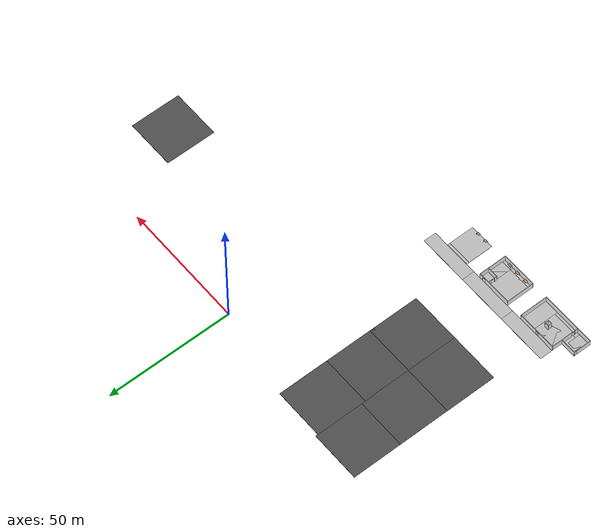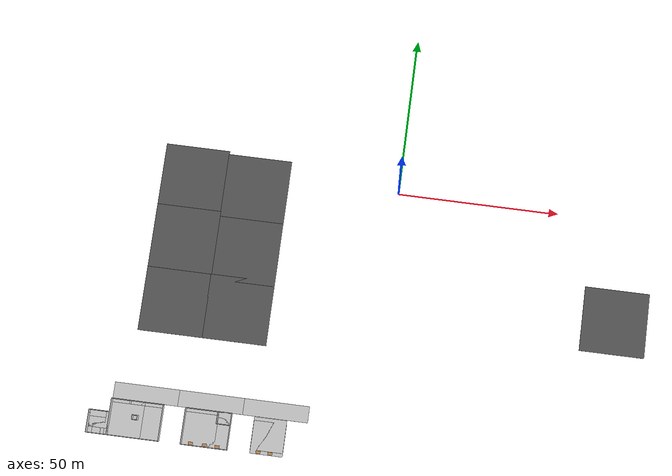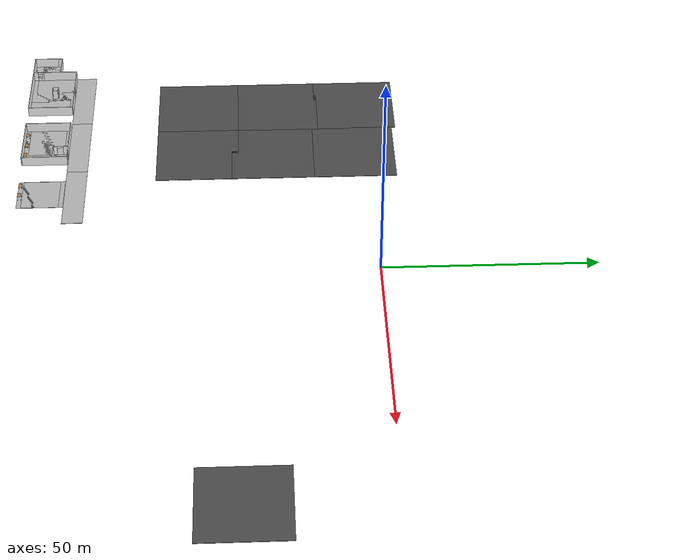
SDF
<sdf version="1.6">
 <world name="default">
  <model name="office1">
   <pose>-70.8387 -79.6403 0 0 -0 0</pose>
   <link name="Wall_11">
    <pose>-7.925 0 0 0 0 -1.5708</pose>
    <visual name="Wall_11_Visual_0">
     <pose>-1.33407 0 1.25 0 -0 0</pose>
     <geometry><box><size>8.58187 0.15 2.5</size></box></geometry>
     <material>
      <script>
       <uri>model://office_env/materials/scripts</uri>
       <uri>model://office_env/materials/textures</uri>
       <name>wall</name>
      </script>
      <ambient>1 1 1 1</ambient>
     </material>
    </visual>
    <collision name="Wall_11_Collision_0">
     <geometry><box><size>8.58187 0.15 2.5</size></box></geometry>
     <pose>-1.33407 0 1.25 0 -0 0</pose>
    </collision>
    <visual name="Wall_11_Visual_1">
     <pose>5.04094 0 1.25 0 -0 0</pose>
     <geometry><box><size>1.16813 0.15 2.5</size></box></geometry>
     <material>
      <script>
       <uri>model://office_env/materials/scripts</uri>
       <uri>model://office_env/materials/textures</uri>
       <name>wall</name>
      </script>
      <ambient>1 1 1 1</ambient>
     </material>
    </visual>
    <collision name="Wall_11_Collision_1">
     <geometry><box><size>1.16813 0.15 2.5</size></box></geometry>
     <pose>5.04094 0 1.25 0 -0 0</pose>
    </collision>
    <visual name="Wall_11_Visual_2">
     <pose>3.70687 0 2.25 0 -0 0</pose>
     <geometry><box><size>1.5 0.15 0.5</size></box></geometry>
     <material>
      <script>
       <uri>model://office_env/materials/scripts</uri>
       <uri>model://office_env/materials/textures</uri>
       <name>wall</name>
      </script>
      <ambient>1 1 1 1</ambient>
     </material>
    </visual>
    <collision name="Wall_11_Collision_2">
     <geometry><box><size>1.5 0.15 0.5</size></box></geometry>
     <pose>3.70687 0 2.25 0 -0 0</pose>
    </collision>
   </link>
   <link name="Wall_12">
    <collision name="Wall_12_Collision">
     <geometry><box><size>16 0.15 2.5</size></box></geometry>
     <pose>0 0 1.25 0 -0 0</pose>
    </collision>
    <visual name="Wall_12_Visual">
     <pose>0 0 1.25 0 -0 0</pose>
     <geometry><box><size>16 0.15 2.5</size></box></geometry>
     <material>
      <script>
       <uri>model://office_env/materials/scripts</uri>
       <uri>model://office_env/materials/textures</uri>
       <name>wall</name>
      </script>
      <ambient>1 1 1 1</ambient>
     </material>
    </visual>
    <pose>0 -5.55 0 0 -0 0</pose>
   </link>
   <link name="Wall_13">
    <collision name="Wall_13_Collision">
     <geometry><box><size>11.25 0.15 2.5</size></box></geometry>
     <pose>0 0 1.25 0 -0 0</pose>
    </collision>
    <visual name="Wall_13_Visual">
     <pose>0 0 1.25 0 -0 0</pose>
     <geometry><box><size>11.25 0.15 2.5</size></box></geometry>
     <material>
      <script>
       <uri>model://office_env/materials/scripts</uri>
       <uri>model://office_env/materials/textures</uri>
       <name>wall</name>
      </script>
      <ambient>1 1 1 1</ambient>
     </material>
    </visual>
    <pose>7.925 0 0 0 -0 1.5708</pose>
   </link>
   <link name="Wall_14">
    <pose>0 5.55 0 0 -0 3.14159</pose>
    <visual name="Wall_14_Visual_0">
     <pose>-4.22963 0 1.25 0 -0 0</pose>
     <geometry><box><size>7.54074 0.15 2.5</size></box></geometry>
     <material>
      <script>
       <uri>model://office_env/materials/scripts</uri>
       <uri>model://office_env/materials/textures</uri>
       <name>wall</name>
      </script>
      <ambient>1 1 1 1</ambient>
     </material>
    </visual>
    <collision name="Wall_14_Collision_0">
     <geometry><box><size>7.54074 0.15 2.5</size></box></geometry>
     <pose>-4.22963 0 1.25 0 -0 0</pose>
    </collision>
    <visual name="Wall_14_Visual_1">
     <pose>4.52037 0 1.25 0 -0 0</pose>
     <geometry><box><size>6.95926 0.15 2.5</size></box></geometry>
     <material>
      <script>
       <uri>model://office_env/materials/scripts</uri>
       <uri>model://office_env/materials/textures</uri>
       <name>wall</name>
      </script>
      <ambient>1 1 1 1</ambient>
     </material>
    </visual>
    <collision name="Wall_14_Collision_1">
     <geometry><box><size>6.95926 0.15 2.5</size></box></geometry>
     <pose>4.52037 0 1.25 0 -0 0</pose>
    </collision>
    <visual name="Wall_14_Visual_2">
     <pose>0.290743 0 2.25 0 -0 0</pose>
     <geometry><box><size>1.5 0.15 0.5</size></box></geometry>
     <material>
      <script>
       <uri>model://office_env/materials/scripts</uri>
       <uri>model://office_env/materials/textures</uri>
       <name>wall</name>
      </script>
      <ambient>1 1 1 1</ambient>
     </material>
    </visual>
    <collision name="Wall_14_Collision_2">
     <geometry><box><size>1.5 0.15 0.5</size></box></geometry>
     <pose>0.290743 0 2.25 0 -0 0</pose>
    </collision>
   </link>
   <link name="Wall_16">
    <collision name="Wall_16_Collision">
     <geometry><box><size>1.5 0.15 2.5</size></box></geometry>
     <pose>0 0 1.25 0 -0 0</pose>
    </collision>
    <visual name="Wall_16_Visual">
     <pose>0 0 1.25 0 -0 0</pose>
     <geometry><box><size>1.5 0.15 2.5</size></box></geometry>
     <material>
      <script>
       <uri>model://office_env/materials/scripts</uri>
       <uri>model://office_env/materials/textures</uri>
       <name>wall</name>
      </script>
      <ambient>1 1 1 1</ambient>
     </material>
    </visual>
    <pose>-0.982348 0.645568 0 0 0 -1.5708</pose>
   </link>
   <link name="Wall_17">
    <collision name="Wall_17_Collision">
     <geometry><box><size>1.75 0.15 2.5</size></box></geometry>
     <pose>0 0 1.25 0 -0 0</pose>
    </collision>
    <visual name="Wall_17_Visual">
     <pose>0 0 1.25 0 -0 0</pose>
     <geometry><box><size>1.75 0.15 2.5</size></box></geometry>
     <material>
      <script>
       <uri>model://office_env/materials/scripts</uri>
       <uri>model://office_env/materials/textures</uri>
       <name>wall</name>
      </script>
      <ambient>1 1 1 1</ambient>
     </material>
    </visual>
    <pose>-0.182348 -0.029432 0 0 -0 0</pose>
   </link>
   <link name="Wall_18">
    <collision name="Wall_18_Collision">
     <geometry><box><size>1.5 0.15 2.5</size></box></geometry>
     <pose>0 0 1.25 0 -0 0</pose>
    </collision>
    <visual name="Wall_18_Visual">
     <pose>0 0 1.25 0 -0 0</pose>
     <geometry><box><size>1.5 0.15 2.5</size></box></geometry>
     <material>
      <script>
       <uri>model://office_env/materials/scripts</uri>
       <uri>model://office_env/materials/textures</uri>
       <name>wall</name>
      </script>
      <ambient>1 1 1 1</ambient>
     </material>
    </visual>
    <pose>0.617652 0.645568 0 0 -0 1.5708</pose>
   </link>
   <link name="Wall_19">
    <collision name="Wall_19_Collision">
     <geometry><box><size>1.75 0.15 2.5</size></box></geometry>
     <pose>0 0 1.25 0 -0 0</pose>
    </collision>
    <visual name="Wall_19_Visual">
     <pose>0 0 1.25 0 -0 0</pose>
     <geometry><box><size>1.75 0.15 2.5</size></box></geometry>
     <material>
      <script>
       <uri>model://office_env/materials/scripts</uri>
       <uri>model://office_env/materials/textures</uri>
       <name>wall</name>
      </script>
      <ambient>1 1 1 1</ambient>
     </material>
    </visual>
    <pose>-0.182348 1.32057 0 0 -0 3.14159</pose>
   </link>
   <static>1</static>
  </model>
  <model name="office2">
   <pose>-81.9632 -81.7145 0 0 -0 0</pose>
   <link name="Wall_21">
    <collision name="Wall_21_Collision">
     <geometry><box><size>6 0.15 2.5</size></box></geometry>
     <pose>0 0 1.25 0 -0 0</pose>
    </collision>
    <visual name="Wall_21_Visual">
     <pose>0 0 1.25 0 -0 0</pose>
     <geometry><box><size>6 0.15 2.5</size></box></geometry>
     <material>
      <script>
       <uri>model://office_env/materials/scripts</uri>
       <uri>model://office_env/materials/textures</uri>
       <name>wall</name>
      </script>
      <ambient>1 1 1 1</ambient>
     </material>
    </visual>
    <pose>-3.05 -0.55 0 0 0 -1.5708</pose>
   </link>
   <link name="Wall_22">
    <collision name="Wall_22_Collision">
     <geometry><box><size>6.25 0.15 2.5</size></box></geometry>
     <pose>0 0 1.25 0 -0 0</pose>
    </collision>
    <visual name="Wall_22_Visual">
     <pose>0 0 1.25 0 -0 0</pose>
     <geometry><box><size>6.25 0.15 2.5</size></box></geometry>
     <material>
      <script>
       <uri>model://office_env/materials/scripts</uri>
       <uri>model://office_env/materials/textures</uri>
       <name>wall</name>
      </script>
      <ambient>1 1 1 1</ambient>
     </material>
    </visual>
    <pose>0 -3.475 0 0 -0 0</pose>
   </link>
   <link name="Wall_24">
    <collision name="Wall_24_Collision">
     <geometry><box><size>1.25 0.15 2.5</size></box></geometry>
     <pose>0 0 1.25 0 -0 0</pose>
    </collision>
    <visual name="Wall_24_Visual">
     <pose>0 0 1.25 0 -0 0</pose>
     <geometry><box><size>1.25 0.15 2.5</size></box></geometry>
     <material>
      <script>
       <uri>model://office_env/materials/scripts</uri>
       <uri>model://office_env/materials/textures</uri>
       <name>wall</name>
      </script>
      <ambient>1 1 1 1</ambient>
     </material>
    </visual>
    <pose>-3.05 2.925 0 0 -0 1.5708</pose>
   </link>
   <link name="Wall_25">
    <collision name="Wall_25_Collision">
     <geometry><box><size>6.25 0.15 2.5</size></box></geometry>
     <pose>0 0 1.25 0 -0 0</pose>
    </collision>
    <visual name="Wall_25_Visual">
     <pose>0 0 1.25 0 -0 0</pose>
     <geometry><box><size>6.25 0.15 2.5</size></box></geometry>
     <material>
      <script>
       <uri>model://office_env/materials/scripts</uri>
       <uri>model://office_env/materials/textures</uri>
       <name>wall</name>
      </script>
      <ambient>1 1 1 1</ambient>
     </material>
    </visual>
    <pose>0 3.475 0 0 -0 0</pose>
   </link>
   <static>1</static>
  </model>
  <model name="office3">
   <pose>-49.0179 -79.6403 0 0 -0 0</pose>
   <link name="Wall_226">
    <collision name="Wall_226_Collision">
     <geometry><box><size>11.25 0.15 2.5</size></box></geometry>
     <pose>0 0 1.25 0 -0 0</pose>
    </collision>
    <visual name="Wall_226_Visual">
     <pose>0 0 1.25 0 -0 0</pose>
     <geometry><box><size>11.25 0.15 2.5</size></box></geometry>
     <material>
      <script>
       <uri>model://office_env/materials/scripts</uri>
       <uri>model://office_env/materials/textures</uri>
       <name>wall</name>
      </script>
      <ambient>1 1 1 1</ambient>
     </material>
    </visual>
    <pose>-7.05 0 0 0 -0 1.5708</pose>
   </link>
   <link name="Wall_228">
    <pose>0 5.55 0 0 -0 0</pose>
    <visual name="Wall_228_Visual_0">
     <pose>-1.41788 0 1.25 0 -0 0</pose>
     <geometry><box><size>11.4142 0.15 2.5</size></box></geometry>
     <material>
      <script>
       <uri>model://office_env/materials/scripts</uri>
       <uri>model://office_env/materials/textures</uri>
       <name>wall</name>
      </script>
      <ambient>1 1 1 1</ambient>
     </material>
    </visual>
    <collision name="Wall_228_Collision_0">
     <geometry><box><size>11.4142 0.15 2.5</size></box></geometry>
     <pose>-1.41788 0 1.25 0 -0 0</pose>
    </collision>
    <visual name="Wall_228_Visual_1">
     <pose>6.45712 0 1.25 0 -0 0</pose>
     <geometry><box><size>1.33575 0.15 2.5</size></box></geometry>
     <material>
      <script>
       <uri>model://office_env/materials/scripts</uri>
       <uri>model://office_env/materials/textures</uri>
       <name>wall</name>
      </script>
      <ambient>1 1 1 1</ambient>
     </material>
    </visual>
    <collision name="Wall_228_Collision_1">
     <geometry><box><size>1.33575 0.15 2.5</size></box></geometry>
     <pose>6.45712 0 1.25 0 -0 0</pose>
    </collision>
    <visual name="Wall_228_Visual_2">
     <pose>5.03925 0 2.25 0 -0 0</pose>
     <geometry><box><size>1.5 0.15 0.5</size></box></geometry>
     <material>
      <script>
       <uri>model://office_env/materials/scripts</uri>
       <uri>model://office_env/materials/textures</uri>
       <name>wall</name>
      </script>
      <ambient>1 1 1 1</ambient>
     </material>
    </visual>
    <collision name="Wall_228_Collision_2">
     <geometry><box><size>1.5 0.15 0.5</size></box></geometry>
     <pose>5.03925 0 2.25 0 -0 0</pose>
    </collision>
   </link>
   <link name="Wall_229">
    <collision name="Wall_229_Collision">
     <geometry><box><size>11.25 0.15 2.5</size></box></geometry>
     <pose>0 0 1.25 0 -0 0</pose>
    </collision>
    <visual name="Wall_229_Visual">
     <pose>0 0 1.25 0 -0 0</pose>
     <geometry><box><size>11.25 0.15 2.5</size></box></geometry>
     <material>
      <script>
       <uri>model://office_env/materials/scripts</uri>
       <uri>model://office_env/materials/textures</uri>
       <name>wall</name>
      </script>
      <ambient>1 1 1 1</ambient>
     </material>
    </visual>
    <pose>7.05 0 0 0 0 -1.5708</pose>
   </link>
   <link name="Wall_230">
    <collision name="Wall_230_Collision">
     <geometry><box><size>14 0.15 2.5</size></box></geometry>
     <pose>0 0 1.25 0 -0 0</pose>
    </collision>
    <visual name="Wall_230_Visual">
     <pose>0 0 1.25 0 -0 0</pose>
     <geometry><box><size>14 0.15 2.5</size></box></geometry>
     <material>
      <script>
       <uri>model://office_env/materials/scripts</uri>
       <uri>model://office_env/materials/textures</uri>
       <name>wall</name>
      </script>
      <ambient>1 1 1 1</ambient>
     </material>
    </visual>
    <pose>0.125 -5.55 0 0 -0 3.14159</pose>
   </link>
   <link name="Wall_231">
    <collision name="Wall_231_Collision">
     <geometry><box><size>0.4 0.15 2.5</size></box></geometry>
     <pose>0 0 1.25 0 -0 0</pose>
    </collision>
    <visual name="Wall_231_Visual">
     <pose>0 0 1.25 0 -0 0</pose>
     <geometry><box><size>0.4 0.15 2.5</size></box></geometry>
     <material>
      <script>
       <uri>model://office_env/materials/scripts</uri>
       <uri>model://office_env/materials/textures</uri>
       <name>wall</name>
      </script>
      <ambient>1 1 1 1</ambient>
     </material>
    </visual>
    <pose>-6.925 -5.55 0 0 -0 3.14159</pose>
   </link>
   <link name="Wall_235">
    <pose>2.82004 3.69571 0 0 0 -1.5708</pose>
    <visual name="Wall_235_Visual_0">
     <pose>-1.26863 0 1.25 0 -0 0</pose>
     <geometry><box><size>1.21274 0.15 2.5</size></box></geometry>
     <material>
      <script>
       <uri>model://office_env/materials/scripts</uri>
       <uri>model://office_env/materials/textures</uri>
       <name>wall</name>
      </script>
      <ambient>1 1 1 1</ambient>
     </material>
    </visual>
    <collision name="Wall_235_Collision_0">
     <geometry><box><size>1.21274 0.15 2.5</size></box></geometry>
     <pose>-1.26863 0 1.25 0 -0 0</pose>
    </collision>
    <visual name="Wall_235_Visual_1">
     <pose>1.35637 0 1.25 0 -0 0</pose>
     <geometry><box><size>1.03726 0.15 2.5</size></box></geometry>
     <material>
      <script>
       <uri>model://office_env/materials/scripts</uri>
       <uri>model://office_env/materials/textures</uri>
       <name>wall</name>
      </script>
      <ambient>1 1 1 1</ambient>
     </material>
    </visual>
    <collision name="Wall_235_Collision_1">
     <geometry><box><size>1.03726 0.15 2.5</size></box></geometry>
     <pose>1.35637 0 1.25 0 -0 0</pose>
    </collision>
    <visual name="Wall_235_Visual_2">
     <pose>0.087742 0 2.25 0 -0 0</pose>
     <geometry><box><size>1.5 0.15 0.5</size></box></geometry>
     <material>
      <script>
       <uri>model://office_env/materials/scripts</uri>
       <uri>model://office_env/materials/textures</uri>
       <name>wall</name>
      </script>
      <ambient>1 1 1 1</ambient>
     </material>
    </visual>
    <collision name="Wall_235_Collision_2">
     <geometry><box><size>1.5 0.15 0.5</size></box></geometry>
     <pose>0.087742 0 2.25 0 -0 0</pose>
    </collision>
   </link>
   <link name="Wall_236">
    <collision name="Wall_236_Collision">
     <geometry><box><size>4.25 0.15 2.5</size></box></geometry>
     <pose>0 0 1.25 0 -0 0</pose>
    </collision>
    <visual name="Wall_236_Visual">
     <pose>0 0 1.25 0 -0 0</pose>
     <geometry><box><size>4.25 0.15 2.5</size></box></geometry>
     <material>
      <script>
       <uri>model://office_env/materials/scripts</uri>
       <uri>model://office_env/materials/textures</uri>
       <name>wall</name>
      </script>
      <ambient>1 1 1 1</ambient>
     </material>
    </visual>
    <pose>4.87004 1.89571 0 0 -0 0</pose>
   </link>
   <static>1</static>
  </model>
  <model name="asphalt_plane_4">
   <static>1</static>
   <link name="link">
    <collision name="collision"><geometry><box><size>20 20 0.1</size></box></geometry></collision>
    <visual name="visual">
     <cast_shadows>0</cast_shadows>
     <geometry><box><size>20 20 0.1</size></box></geometry>
     <material>
      <script>
       <uri>model://asphalt_plane/materials/scripts</uri>
       <uri>model://asphalt_plane/materials/textures</uri>
       <name>vrc/asphalt</name>
      </script>
     </material>
    </visual>
   </link>
   <pose>-64.5183 -2.94145 0 0 -0 0</pose>
  </model>
  <model name="asphalt_plane_5">
   <static>1</static>
   <link name="link">
    <collision name="collision"><geometry><box><size>20 20 0.1</size></box></geometry></collision>
    <visual name="visual">
     <cast_shadows>0</cast_shadows>
     <geometry><box><size>20 20 0.1</size></box></geometry>
     <material>
      <script>
       <uri>model://asphalt_plane/materials/scripts</uri>
       <uri>model://asphalt_plane/materials/textures</uri>
       <name>vrc/asphalt</name>
      </script>
     </material>
    </visual>
   </link>
   <pose>-64.5294 -22.3652 0 0 -0 0</pose>
  </model>
  <model name="asphalt_plane_6">
   <static>1</static>
   <link name="link">
    <collision name="collision"><geometry><box><size>20 20 0.1</size></box></geometry></collision>
    <visual name="visual">
     <cast_shadows>0</cast_shadows>
     <geometry><box><size>20 20 0.1</size></box></geometry>
     <material>
      <script>
       <uri>model://asphalt_plane/materials/scripts</uri>
       <uri>model://asphalt_plane/materials/textures</uri>
       <name>vrc/asphalt</name>
      </script>
     </material>
    </visual>
   </link>
   <pose>-64.5489 -42.3307 0 0 -0 0</pose>
  </model>
  <model name="asphalt_plane_11">
   <static>1</static>
   <link name="link">
    <collision name="collision"><geometry><box><size>20 20 0.1</size></box></geometry></collision>
    <visual name="visual">
     <cast_shadows>0</cast_shadows>
     <geometry><box><size>20 20 0.1</size></box></geometry>
     <material>
      <script>
       <uri>model://asphalt_plane/materials/scripts</uri>
       <uri>model://asphalt_plane/materials/textures</uri>
       <name>vrc/asphalt</name>
      </script>
     </material>
    </visual>
   </link>
   <pose>-44.6674 -3.87186 0 0 -0 0</pose>
  </model>
  <model name="asphalt_plane_12">
   <static>1</static>
   <link name="link">
    <collision name="collision"><geometry><box><size>20 20 0.1</size></box></geometry></collision>
    <visual name="visual">
     <cast_shadows>0</cast_shadows>
     <geometry><box><size>20 20 0.1</size></box></geometry>
     <material>
      <script>
       <uri>model://asphalt_plane/materials/scripts</uri>
       <uri>model://asphalt_plane/materials/textures</uri>
       <name>vrc/asphalt</name>
      </script>
     </material>
    </visual>
   </link>
   <pose>-44.6971 -23.8447 0 0 -0 0</pose>
  </model>
  <model name="asphalt_plane_13">
   <static>1</static>
   <link name="link">
    <collision name="collision"><geometry><box><size>20 20 0.1</size></box></geometry></collision>
    <visual name="visual">
     <cast_shadows>0</cast_shadows>
     <geometry><box><size>20 20 0.1</size></box></geometry>
     <material>
      <script>
       <uri>model://asphalt_plane/materials/scripts</uri>
       <uri>model://asphalt_plane/materials/textures</uri>
       <name>vrc/asphalt</name>
      </script>
     </material>
    </visual>
   </link>
   <pose>-44.7034 -42.3237 0 0 -0 0</pose>
  </model>
  <model name="asphalt_plane">
   <static>1</static>
   <link name="link">
    <collision name="collision"><geometry><box><size>20 20 0.1</size></box></geometry></collision>
    <visual name="visual">
     <cast_shadows>0</cast_shadows>
     <geometry><box><size>20 20 0.1</size></box></geometry>
     <material>
      <script>
       <uri>model://asphalt_plane/materials/scripts</uri>
       <uri>model://asphalt_plane/materials/textures</uri>
       <name>vrc/asphalt</name>
      </script>
     </material>
    </visual>
   </link>
   <pose>70.7475 -31.5972 0 0 -0 0</pose>
  </model>
  <model name="table_4">
   <static>0</static>
   <link name="link">
    <collision name="surface">
     <pose>0 0 1 0 -0 0</pose>
     <geometry><box><size>1.5 0.8 0.03</size></box></geometry>
     <surface><friction><ode><mu>0.6</mu><mu2>0.6</mu2></ode></friction></surface>
    </collision>
    <visual name="visual1">
     <pose>0 0 1 0 -0 0</pose>
     <geometry><box><size>1.4 0.8 0.04</size></box></geometry>
     <material>
      <script><uri>file://media/materials/scripts/gazebo.material</uri><name>Gazebo/Wood</name></script>
     </material>
    </visual>
    <collision name="front_left_leg">
     <pose>0.68 0.38 0.5 0 -0 0</pose>
     <geometry><cylinder><radius>0.02</radius><length>1</length></cylinder></geometry>
    </collision>
    <visual name="front_left_leg">
     <pose>0.68 0.38 0.5 0 -0 0</pose>
     <geometry><cylinder><radius>0.02</radius><length>1</length></cylinder></geometry>
     <material>
      <script>
       <uri>model://office_env/materials/scripts</uri>
       <uri>model://office_env/materials/textures</uri>
       <name>wall</name>
      </script>
     </material>
    </visual>
    <collision name="front_right_leg">
     <pose>0.68 -0.38 0.5 0 -0 0</pose>
     <geometry><cylinder><radius>0.02</radius><length>1</length></cylinder></geometry>
    </collision>
    <visual name="front_right_leg">
     <pose>0.68 -0.38 0.5 0 -0 0</pose>
     <geometry><cylinder><radius>0.02</radius><length>1</length></cylinder></geometry>
     <material>
      <script>
       <uri>model://office_env/materials/scripts</uri>
       <uri>model://office_env/materials/textures</uri>
       <name>wall</name>
      </script>
     </material>
    </visual>
    <collision name="back_right_leg">
     <pose>-0.68 -0.38 0.5 0 -0 0</pose>
     <geometry><cylinder><radius>0.02</radius><length>1</length></cylinder></geometry>
    </collision>
    <visual name="back_right_leg">
     <pose>-0.68 -0.38 0.5 0 -0 0</pose>
     <geometry><cylinder><radius>0.02</radius><length>1</length></cylinder></geometry>
     <material>
      <script>
       <uri>model://office_env/materials/scripts</uri>
       <uri>model://office_env/materials/textures</uri>
       <name>wall</name>
      </script>
     </material>
    </visual>
    <collision name="back_left_leg">
     <pose>-0.68 0.38 0.5 0 -0 0</pose>
     <geometry><cylinder><radius>0.02</radius><length>1</length></cylinder></geometry>
    </collision>
    <visual name="back_left_leg">
     <pose>-0.68 0.38 0.5 0 -0 0</pose>
     <geometry><cylinder><radius>0.02</radius><length>1</length></cylinder></geometry>
     <material>
      <script>
       <uri>model://office_env/materials/scripts</uri>
       <uri>model://office_env/materials/textures</uri>
       <name>wall</name>
      </script>
     </material>
    </visual>
    <inertial>
     <inertia><ixx>1</ixx><ixy>0</ixy><ixz>0</ixz><iyy>1</iyy><iyz>0</iyz><izz>1</izz></inertia>
     <mass>1</mass>
    </inertial>
   </link>
   <pose>-32.5002 -84.6276 0.034993 -3e-06 3e-06 0</pose>
  </model>
  <model name="table_5">
   <static>0</static>
   <link name="link">
    <collision name="surface">
     <pose>0 0 1 0 -0 0</pose>
     <geometry><box><size>1.5 0.8 0.03</size></box></geometry>
     <surface><friction><ode><mu>0.6</mu><mu2>0.6</mu2></ode></friction></surface>
    </collision>
    <visual name="visual1">
     <pose>0 0 1 0 -0 0</pose>
     <geometry><box><size>1.4 0.8 0.04</size></box></geometry>
     <material>
      <script><uri>file://media/materials/scripts/gazebo.material</uri><name>Gazebo/Wood</name></script>
     </material>
    </visual>
    <collision name="front_left_leg">
     <pose>0.68 0.38 0.5 0 -0 0</pose>
     <geometry><cylinder><radius>0.02</radius><length>1</length></cylinder></geometry>
    </collision>
    <visual name="front_left_leg">
     <pose>0.68 0.38 0.5 0 -0 0</pose>
     <geometry><cylinder><radius>0.02</radius><length>1</length></cylinder></geometry>
     <material>
      <script>
       <uri>model://office_env/materials/scripts</uri>
       <uri>model://office_env/materials/textures</uri>
       <name>wall</name>
      </script>
     </material>
    </visual>
    <collision name="front_right_leg">
     <pose>0.68 -0.38 0.5 0 -0 0</pose>
     <geometry><cylinder><radius>0.02</radius><length>1</length></cylinder></geometry>
    </collision>
    <visual name="front_right_leg">
     <pose>0.68 -0.38 0.5 0 -0 0</pose>
     <geometry><cylinder><radius>0.02</radius><length>1</length></cylinder></geometry>
     <material>
      <script>
       <uri>model://office_env/materials/scripts</uri>
       <uri>model://office_env/materials/textures</uri>
       <name>wall</name>
      </script>
     </material>
    </visual>
    <collision name="back_right_leg">
     <pose>-0.68 -0.38 0.5 0 -0 0</pose>
     <geometry><cylinder><radius>0.02</radius><length>1</length></cylinder></geometry>
    </collision>
    <visual name="back_right_leg">
     <pose>-0.68 -0.38 0.5 0 -0 0</pose>
     <geometry><cylinder><radius>0.02</radius><length>1</length></cylinder></geometry>
     <material>
      <script>
       <uri>model://office_env/materials/scripts</uri>
       <uri>model://office_env/materials/textures</uri>
       <name>wall</name>
      </script>
     </material>
    </visual>
    <collision name="back_left_leg">
     <pose>-0.68 0.38 0.5 0 -0 0</pose>
     <geometry><cylinder><radius>0.02</radius><length>1</length></cylinder></geometry>
    </collision>
    <visual name="back_left_leg">
     <pose>-0.68 0.38 0.5 0 -0 0</pose>
     <geometry><cylinder><radius>0.02</radius><length>1</length></cylinder></geometry>
     <material>
      <script>
       <uri>model://office_env/materials/scripts</uri>
       <uri>model://office_env/materials/textures</uri>
       <name>wall</name>
      </script>
     </material>
    </visual>
    <inertial>
     <inertia><ixx>1</ixx><ixy>0</ixy><ixz>0</ixz><iyy>1</iyy><iyz>0</iyz><izz>1</izz></inertia>
     <mass>1</mass>
    </inertial>
   </link>
   <pose>-28.8169 -84.6215 0.034992 0 -0 0</pose>
  </model>
  <model name="table_7">
   <static>0</static>
   <link name="link">
    <collision name="surface">
     <pose>0 0 1 0 -0 0</pose>
     <geometry><box><size>1.5 0.8 0.03</size></box></geometry>
     <surface><friction><ode><mu>0.6</mu><mu2>0.6</mu2></ode></friction></surface>
    </collision>
    <visual name="visual1">
     <pose>0 0 1 0 -0 0</pose>
     <geometry><box><size>1.4 0.8 0.04</size></box></geometry>
     <material>
      <script><uri>file://media/materials/scripts/gazebo.material</uri><name>Gazebo/Wood</name></script>
     </material>
    </visual>
    <collision name="front_left_leg">
     <pose>0.68 0.38 0.5 0 -0 0</pose>
     <geometry><cylinder><radius>0.02</radius><length>1</length></cylinder></geometry>
    </collision>
    <visual name="front_left_leg">
     <pose>0.68 0.38 0.5 0 -0 0</pose>
     <geometry><cylinder><radius>0.02</radius><length>1</length></cylinder></geometry>
     <material>
      <script>
       <uri>model://office_env/materials/scripts</uri>
       <uri>model://office_env/materials/textures</uri>
       <name>wall</name>
      </script>
     </material>
    </visual>
    <collision name="front_right_leg">
     <pose>0.68 -0.38 0.5 0 -0 0</pose>
     <geometry><cylinder><radius>0.02</radius><length>1</length></cylinder></geometry>
    </collision>
    <visual name="front_right_leg">
     <pose>0.68 -0.38 0.5 0 -0 0</pose>
     <geometry><cylinder><radius>0.02</radius><length>1</length></cylinder></geometry>
     <material>
      <script>
       <uri>model://office_env/materials/scripts</uri>
       <uri>model://office_env/materials/textures</uri>
       <name>wall</name>
      </script>
     </material>
    </visual>
    <collision name="back_right_leg">
     <pose>-0.68 -0.38 0.5 0 -0 0</pose>
     <geometry><cylinder><radius>0.02</radius><length>1</length></cylinder></geometry>
    </collision>
    <visual name="back_right_leg">
     <pose>-0.68 -0.38 0.5 0 -0 0</pose>
     <geometry><cylinder><radius>0.02</radius><length>1</length></cylinder></geometry>
     <material>
      <script>
       <uri>model://office_env/materials/scripts</uri>
       <uri>model://office_env/materials/textures</uri>
       <name>wall</name>
      </script>
     </material>
    </visual>
    <collision name="back_left_leg">
     <pose>-0.68 0.38 0.5 0 -0 0</pose>
     <geometry><cylinder><radius>0.02</radius><length>1</length></cylinder></geometry>
    </collision>
    <visual name="back_left_leg">
     <pose>-0.68 0.38 0.5 0 -0 0</pose>
     <geometry><cylinder><radius>0.02</radius><length>1</length></cylinder></geometry>
     <material>
      <script>
       <uri>model://office_env/materials/scripts</uri>
       <uri>model://office_env/materials/textures</uri>
       <name>wall</name>
      </script>
     </material>
    </visual>
    <inertial>
     <inertia><ixx>1</ixx><ixy>0</ixy><ixz>0</ixz><iyy>1</iyy><iyz>0</iyz><izz>1</izz></inertia>
     <mass>1</mass>
    </inertial>
   </link>
   <pose>-53.1425 -84.5557 0.034993 -2e-06 3e-06 0</pose>
  </model>
  <model name="table_8">
   <static>0</static>
   <link name="link">
    <collision name="surface">
     <pose>0 0 1 0 -0 0</pose>
     <geometry><box><size>1.5 0.8 0.03</size></box></geometry>
     <surface><friction><ode><mu>0.6</mu><mu2>0.6</mu2></ode></friction></surface>
    </collision>
    <visual name="visual1">
     <pose>0 0 1 0 -0 0</pose>
     <geometry><box><size>1.4 0.8 0.04</size></box></geometry>
     <material>
      <script><uri>file://media/materials/scripts/gazebo.material</uri><name>Gazebo/Wood</name></script>
     </material>
    </visual>
    <collision name="front_left_leg">
     <pose>0.68 0.38 0.5 0 -0 0</pose>
     <geometry><cylinder><radius>0.02</radius><length>1</length></cylinder></geometry>
    </collision>
    <visual name="front_left_leg">
     <pose>0.68 0.38 0.5 0 -0 0</pose>
     <geometry><cylinder><radius>0.02</radius><length>1</length></cylinder></geometry>
     <material>
      <script>
       <uri>model://office_env/materials/scripts</uri>
       <uri>model://office_env/materials/textures</uri>
       <name>wall</name>
      </script>
     </material>
    </visual>
    <collision name="front_right_leg">
     <pose>0.68 -0.38 0.5 0 -0 0</pose>
     <geometry><cylinder><radius>0.02</radius><length>1</length></cylinder></geometry>
    </collision>
    <visual name="front_right_leg">
     <pose>0.68 -0.38 0.5 0 -0 0</pose>
     <geometry><cylinder><radius>0.02</radius><length>1</length></cylinder></geometry>
     <material>
      <script>
       <uri>model://office_env/materials/scripts</uri>
       <uri>model://office_env/materials/textures</uri>
       <name>wall</name>
      </script>
     </material>
    </visual>
    <collision name="back_right_leg">
     <pose>-0.68 -0.38 0.5 0 -0 0</pose>
     <geometry><cylinder><radius>0.02</radius><length>1</length></cylinder></geometry>
    </collision>
    <visual name="back_right_leg">
     <pose>-0.68 -0.38 0.5 0 -0 0</pose>
     <geometry><cylinder><radius>0.02</radius><length>1</length></cylinder></geometry>
     <material>
      <script>
       <uri>model://office_env/materials/scripts</uri>
       <uri>model://office_env/materials/textures</uri>
       <name>wall</name>
      </script>
     </material>
    </visual>
    <collision name="back_left_leg">
     <pose>-0.68 0.38 0.5 0 -0 0</pose>
     <geometry><cylinder><radius>0.02</radius><length>1</length></cylinder></geometry>
    </collision>
    <visual name="back_left_leg">
     <pose>-0.68 0.38 0.5 0 -0 0</pose>
     <geometry><cylinder><radius>0.02</radius><length>1</length></cylinder></geometry>
     <material>
      <script>
       <uri>model://office_env/materials/scripts</uri>
       <uri>model://office_env/materials/textures</uri>
       <name>wall</name>
      </script>
     </material>
    </visual>
    <inertial>
     <inertia><ixx>1</ixx><ixy>0</ixy><ixz>0</ixz><iyy>1</iyy><iyz>0</iyz><izz>1</izz></inertia>
     <mass>1</mass>
    </inertial>
   </link>
   <pose>-48.8849 -84.5469 0.034991 0 -0 0</pose>
  </model>
  <model name="table_9">
   <static>0</static>
   <link name="link">
    <collision name="surface">
     <pose>0 0 1 0 -0 0</pose>
     <geometry><box><size>1.5 0.8 0.03</size></box></geometry>
     <surface><friction><ode><mu>0.6</mu><mu2>0.6</mu2></ode></friction></surface>
    </collision>
    <visual name="visual1">
     <pose>0 0 1 0 -0 0</pose>
     <geometry><box><size>1.4 0.8 0.04</size></box></geometry>
     <material>
      <script><uri>file://media/materials/scripts/gazebo.material</uri><name>Gazebo/Wood</name></script>
     </material>
    </visual>
    <collision name="front_left_leg">
     <pose>0.68 0.38 0.5 0 -0 0</pose>
     <geometry><cylinder><radius>0.02</radius><length>1</length></cylinder></geometry>
    </collision>
    <visual name="front_left_leg">
     <pose>0.68 0.38 0.5 0 -0 0</pose>
     <geometry><cylinder><radius>0.02</radius><length>1</length></cylinder></geometry>
     <material>
      <script>
       <uri>model://office_env/materials/scripts</uri>
       <uri>model://office_env/materials/textures</uri>
       <name>wall</name>
      </script>
     </material>
    </visual>
    <collision name="front_right_leg">
     <pose>0.68 -0.38 0.5 0 -0 0</pose>
     <geometry><cylinder><radius>0.02</radius><length>1</length></cylinder></geometry>
    </collision>
    <visual name="front_right_leg">
     <pose>0.68 -0.38 0.5 0 -0 0</pose>
     <geometry><cylinder><radius>0.02</radius><length>1</length></cylinder></geometry>
     <material>
      <script>
       <uri>model://office_env/materials/scripts</uri>
       <uri>model://office_env/materials/textures</uri>
       <name>wall</name>
      </script>
     </material>
    </visual>
    <collision name="back_right_leg">
     <pose>-0.68 -0.38 0.5 0 -0 0</pose>
     <geometry><cylinder><radius>0.02</radius><length>1</length></cylinder></geometry>
    </collision>
    <visual name="back_right_leg">
     <pose>-0.68 -0.38 0.5 0 -0 0</pose>
     <geometry><cylinder><radius>0.02</radius><length>1</length></cylinder></geometry>
     <material>
      <script>
       <uri>model://office_env/materials/scripts</uri>
       <uri>model://office_env/materials/textures</uri>
       <name>wall</name>
      </script>
     </material>
    </visual>
    <collision name="back_left_leg">
     <pose>-0.68 0.38 0.5 0 -0 0</pose>
     <geometry><cylinder><radius>0.02</radius><length>1</length></cylinder></geometry>
    </collision>
    <visual name="back_left_leg">
     <pose>-0.68 0.38 0.5 0 -0 0</pose>
     <geometry><cylinder><radius>0.02</radius><length>1</length></cylinder></geometry>
     <material>
      <script>
       <uri>model://office_env/materials/scripts</uri>
       <uri>model://office_env/materials/textures</uri>
       <name>wall</name>
      </script>
     </material>
    </visual>
    <inertial>
     <inertia><ixx>1</ixx><ixy>0</ixy><ixz>0</ixz><iyy>1</iyy><iyz>0</iyz><izz>1</izz></inertia>
     <mass>1</mass>
    </inertial>
   </link>
   <pose>-45.0488 -84.6021 0.034997 2e-06 -3e-06 0</pose>
  </model>
  <model name="Floor_11">
   <link name="main">
    <pose>0 0 0.01 0 -0 0</pose>
    <collision name="main_Collision"><geometry><box><size>5 5 0.05</size></box></geometry></collision>
    <visual name="main_Visual">
     <geometry><box><size>5 5 0.05</size></box></geometry>
     <material>
      <script>
       <uri>model://Floor_verysmall/materials/scripts</uri>
       <uri>model://Floor_verysmall/materials/textures</uri>
       <name>floor</name>
      </script>
     </material>
    </visual>
   </link>
   <static>1</static>
   <pose>-81.1614 -82.7174 0 0 -0 0</pose>
  </model>
  <model name="Floor_12">
   <link name="main">
    <pose>0 0 0.01 0 -0 0</pose>
    <collision name="main_Collision"><geometry><box><size>5 5 0.05</size></box></geometry></collision>
    <visual name="main_Visual">
     <geometry><box><size>5 5 0.05</size></box></geometry>
     <material>
      <script>
       <uri>model://Floor_verysmall/materials/scripts</uri>
       <uri>model://Floor_verysmall/materials/textures</uri>
       <name>floor</name>
      </script>
     </material>
    </visual>
   </link>
   <static>1</static>
   <pose>-81.2158 -80.8143 0 0 -0 0</pose>
  </model>
  <model name="Floor_13">
   <link name="main">
    <pose>0 0 0.01 0 -0 0</pose>
    <collision name="main_Collision"><geometry><box><size>5 5 0.05</size></box></geometry></collision>
    <visual name="main_Visual">
     <geometry><box><size>5 5 0.05</size></box></geometry>
     <material>
      <script>
       <uri>model://Floor_verysmall/materials/scripts</uri>
       <uri>model://Floor_verysmall/materials/textures</uri>
       <name>floor</name>
      </script>
     </material>
    </visual>
   </link>
   <static>1</static>
   <pose>-82.4661 -82.6128 0 0 -0 0</pose>
  </model>
  <model name="Floor_14">
   <link name="main">
    <pose>0 0 0.01 0 -0 0</pose>
    <collision name="main_Collision"><geometry><box><size>5 5 0.05</size></box></geometry></collision>
    <visual name="main_Visual">
     <geometry><box><size>5 5 0.05</size></box></geometry>
     <material>
      <script>
       <uri>model://Floor_verysmall/materials/scripts</uri>
       <uri>model://Floor_verysmall/materials/textures</uri>
       <name>floor</name>
      </script>
     </material>
    </visual>
   </link>
   <static>1</static>
   <pose>-82.4472 -80.8042 0 0 -0 0</pose>
  </model>
  <model name="Floor_17">
   <link name="main">
    <pose>0 0 0.01 0 -0 0</pose>
    <collision name="main_Collision"><geometry><box><size>10 10 0.05</size></box></geometry></collision>
    <visual name="main_Visual">
     <geometry><box><size>10 10 0.05</size></box></geometry>
     <material>
      <script>
       <uri>model://Floor_small/materials/scripts</uri>
       <uri>model://Floor_small/materials/textures</uri>
       <name>floor</name>
      </script>
     </material>
    </visual>
   </link>
   <static>1</static>
   <pose>-30.0626 -80.1866 0 0 -0 0</pose>
  </model>
  <model name="Floor_18">
   <link name="main">
    <pose>0 0 0.01 0 -0 0</pose>
    <collision name="main_Collision"><geometry><box><size>10 10 0.05</size></box></geometry></collision>
    <visual name="main_Visual">
     <geometry><box><size>10 10 0.05</size></box></geometry>
     <material>
      <script>
       <uri>model://Floor_small/materials/scripts</uri>
       <uri>model://Floor_small/materials/textures</uri>
       <name>floor</name>
      </script>
     </material>
    </visual>
   </link>
   <static>1</static>
   <pose>-30.1417 -79.1069 0 0 -0 0</pose>
  </model>
  <model name="Floor_19">
   <link name="main">
    <pose>0 0 0.01 0 -0 0</pose>
    <collision name="main_Collision"><geometry><box><size>10 10 0.05</size></box></geometry></collision>
    <visual name="main_Visual">
     <geometry><box><size>10 10 0.05</size></box></geometry>
     <material>
      <script>
       <uri>model://Floor_small/materials/scripts</uri>
       <uri>model://Floor_small/materials/textures</uri>
       <name>floor</name>
      </script>
     </material>
    </visual>
   </link>
   <static>1</static>
   <pose>-47.0146 -80.1187 0 0 -0 0</pose>
  </model>
  <model name="Floor_20">
   <link name="main">
    <pose>0 0 0.01 0 -0 0</pose>
    <collision name="main_Collision"><geometry><box><size>10 10 0.05</size></box></geometry></collision>
    <visual name="main_Visual">
     <geometry><box><size>10 10 0.05</size></box></geometry>
     <material>
      <script>
       <uri>model://Floor_small/materials/scripts</uri>
       <uri>model://Floor_small/materials/textures</uri>
       <name>floor</name>
      </script>
     </material>
    </visual>
   </link>
   <static>1</static>
   <pose>-47.0243 -79.0861 0 0 -0 0</pose>
  </model>
  <model name="Floor_21">
   <link name="main">
    <pose>0 0 0.01 0 -0 0</pose>
    <collision name="main_Collision"><geometry><box><size>10 10 0.05</size></box></geometry></collision>
    <visual name="main_Visual">
     <geometry><box><size>10 10 0.05</size></box></geometry>
     <material>
      <script>
       <uri>model://Floor_small/materials/scripts</uri>
       <uri>model://Floor_small/materials/textures</uri>
       <name>floor</name>
      </script>
     </material>
    </visual>
   </link>
   <static>1</static>
   <pose>-51.0322 -80.1481 0 0 -0 0</pose>
  </model>
  <model name="Floor_22">
   <link name="main">
    <pose>0 0 0.01 0 -0 0</pose>
    <collision name="main_Collision"><geometry><box><size>10 10 0.05</size></box></geometry></collision>
    <visual name="main_Visual">
     <geometry><box><size>10 10 0.05</size></box></geometry>
     <material>
      <script>
       <uri>model://Floor_small/materials/scripts</uri>
       <uri>model://Floor_small/materials/textures</uri>
       <name>floor</name>
      </script>
     </material>
    </visual>
   </link>
   <static>1</static>
   <pose>-51.0111 -79.0401 0 0 -0 0</pose>
  </model>
  <model name="Floor_23">
   <link name="main">
    <pose>0 0 0.01 0 -0 0</pose>
    <collision name="main_Collision"><geometry><box><size>10 10 0.05</size></box></geometry></collision>
    <visual name="main_Visual">
     <geometry><box><size>10 10 0.05</size></box></geometry>
     <material>
      <script>
       <uri>model://Floor_small/materials/scripts</uri>
       <uri>model://Floor_small/materials/textures</uri>
       <name>floor</name>
      </script>
     </material>
    </visual>
   </link>
   <static>1</static>
   <pose>-73.7752 -80.1087 0 0 -0 0</pose>
  </model>
  <model name="Floor_24">
   <link name="main">
    <pose>0 0 0.01 0 -0 0</pose>
    <collision name="main_Collision"><geometry><box><size>10 10 0.05</size></box></geometry></collision>
    <visual name="main_Visual">
     <geometry><box><size>10 10 0.05</size></box></geometry>
     <material>
      <script>
       <uri>model://Floor_small/materials/scripts</uri>
       <uri>model://Floor_small/materials/textures</uri>
       <name>floor</name>
      </script>
     </material>
    </visual>
   </link>
   <static>1</static>
   <pose>-73.7245 -79.0769 0 0 -0 0</pose>
  </model>
  <model name="Floor_25">
   <link name="main">
    <pose>0 0 0.01 0 -0 0</pose>
    <collision name="main_Collision"><geometry><box><size>10 10 0.05</size></box></geometry></collision>
    <visual name="main_Visual">
     <geometry><box><size>10 10 0.05</size></box></geometry>
     <material>
      <script>
       <uri>model://Floor_small/materials/scripts</uri>
       <uri>model://Floor_small/materials/textures</uri>
       <name>floor</name>
      </script>
     </material>
    </visual>
   </link>
   <static>1</static>
   <pose>-67.9672 -80.1215 0 0 -0 0</pose>
  </model>
  <model name="Floor_26">
   <link name="main">
    <pose>0 0 0.01 0 -0 0</pose>
    <collision name="main_Collision"><geometry><box><size>10 10 0.05</size></box></geometry></collision>
    <visual name="main_Visual">
     <geometry><box><size>10 10 0.05</size></box></geometry>
     <material>
      <script>
       <uri>model://Floor_small/materials/scripts</uri>
       <uri>model://Floor_small/materials/textures</uri>
       <name>floor</name>
      </script>
     </material>
    </visual>
   </link>
   <static>1</static>
   <pose>-67.9802 -79.1548 0 0 -0 0</pose>
  </model>
  <model name="outdoor_plane_clone">
   <static>1</static>
   <link name="link">
    <collision name="collision"><geometry><box><size>5 20 0.1</size></box></geometry></collision>
    <visual name="visual">
     <cast_shadows>0</cast_shadows>
     <geometry><box><size>5 20 0.1</size></box></geometry>
     <material>
      <script>
       <uri>model://outdoor_plane/materials/scripts</uri>
       <uri>model://outdoor_plane/materials/textures</uri>
       <name>outds/Image</name>
      </script>
     </material>
    </visual>
   </link>
   <pose>-48.8451 -71.5216 0 0 -0 1.57079</pose>
  </model>
  <model name="outdoor_plane_clone_clone">
   <static>1</static>
   <link name="link">
    <collision name="collision"><geometry><box><size>5 20 0.1</size></box></geometry></collision>
    <visual name="visual">
     <cast_shadows>0</cast_shadows>
     <geometry><box><size>5 20 0.1</size></box></geometry>
     <material>
      <script>
       <uri>model://outdoor_plane/materials/scripts</uri>
       <uri>model://outdoor_plane/materials/textures</uri>
       <name>outds/Image</name>
      </script>
     </material>
    </visual>
   </link>
   <pose>-28.8608 -71.5211 0 0 -0 1.57079</pose>
  </model>
  <model name="Floor_0">
   <link name="main">
    <pose>0 0 0.01 0 -0 0</pose>
    <collision name="main_Collision"><geometry><box><size>5 5 0.05</size></box></geometry></collision>
    <visual name="main_Visual">
     <geometry><box><size>5 5 0.05</size></box></geometry>
     <material>
      <script>
       <uri>model://Floor_verysmall/materials/scripts</uri>
       <uri>model://Floor_verysmall/materials/textures</uri>
       <name>floor</name>
      </script>
     </material>
    </visual>
   </link>
   <static>1</static>
   <pose>-44.5634 -76.0712 0 0 -0 0</pose>
  </model>
  <model name="outdoor_plane_clone_clone_0">
   <static>1</static>
   <link name="link">
    <collision name="collision"><geometry><box><size>5 20 0.1</size></box></geometry></collision>
    <visual name="visual">
     <cast_shadows>0</cast_shadows>
     <geometry><box><size>5 20 0.1</size></box></geometry>
     <material>
      <script>
       <uri>model://outdoor_plane/materials/scripts</uri>
       <uri>model://outdoor_plane/materials/textures</uri>
       <name>outds/Image</name>
      </script>
     </material>
    </visual>
   </link>
   <pose>-68.8133 -71.5144 0 0 -0 1.57079</pose>
  </model>
  <model name="Floor_2">
   <link name="main">
    <pose>0 0 0.01 0 -0 0</pose>
    <collision name="main_Collision"><geometry><box><size>5 5 0.05</size></box></geometry></collision>
    <visual name="main_Visual">
     <geometry><box><size>5 5 0.05</size></box></geometry>
     <material>
      <script>
       <uri>model://Floor_verysmall/materials/scripts</uri>
       <uri>model://Floor_verysmall/materials/textures</uri>
       <name>floor</name>
      </script>
     </material>
    </visual>
   </link>
   <static>1</static>
   <pose>-71.0255 -74.8631 0 0 -0 0</pose>
  </model>
 </world>
</sdf>
